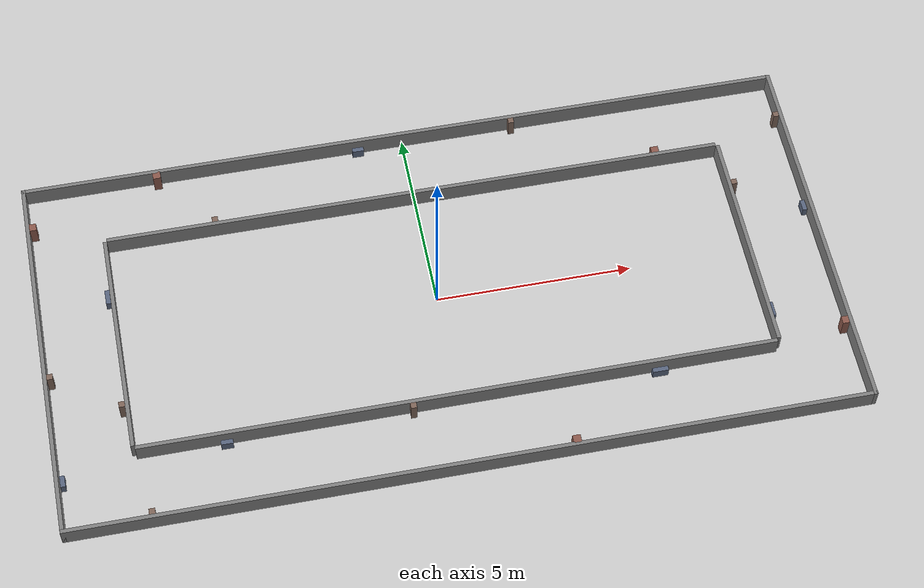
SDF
<?xml version="1.0" ?>
<sdf version="1.6">
  <world name="default">
    <!-- Ignition Fortress (v6) plugins - DO NOT use gz-sim-* or gz::sim::systems::* -->
    <plugin filename="libignition-gazebo-physics-system.so" name="ignition::gazebo::systems::Physics"/>
    <plugin filename="libignition-gazebo-user-commands-system.so" name="ignition::gazebo::systems::UserCommands"/>
    <plugin filename="libignition-gazebo-scene-broadcaster-system.so" name="ignition::gazebo::systems::SceneBroadcaster"/>
    <plugin filename="libignition-gazebo-imu-system.so" name="ignition::gazebo::systems::Imu"/>
    <plugin filename="libignition-gazebo-sensors-system.so" name="ignition::gazebo::systems::Sensors">
      <render_engine>ogre2</render_engine>
    </plugin>

    <!-- Directional light -->
    <light name="sun" type="directional">
      <pose>0 0 10 0 0.5 0</pose>
      <diffuse>1 1 1 1</diffuse>
      <specular>1 1 1 1</specular>
      <direction>-1 -1 -1</direction>
      <cast_shadows>true</cast_shadows>
    </light>

    <!-- Inline ground plane -->
    <model name="ground_plane">
      <static>true</static>
      <link name="link">
        <collision name="collision">
          <geometry>
            <plane>
              <normal>0 0 1</normal>
              <size>50 50</size>
            </plane>
          </geometry>
          <surface>
            <friction>
              <ode>
                <mu>100</mu>
                <mu2>50</mu2>
              </ode>
            </friction>
          </surface>
        </collision>
        <visual name="visual">
          <geometry>
            <plane>
              <normal>0 0 1</normal>
              <size>50 50</size>
            </plane>
          </geometry>
          <material>
            <ambient>0.8 0.8 0.8 1</ambient>
            <diffuse>0.8 0.8 0.8 1</diffuse>
            <specular>0.1 0.1 0.1 1</specular>
          </material>
        </visual>
      </link>
    </model>

    <!-- ========== OUTER WALLS ========== -->
    <!-- South outer: y=-5.0, from x=-10 to x=+10 -->
    <model name="wall_south_outer">
      <static>true</static>
      <pose>0 -4.95 0.25 0 0 0</pose>
      <link name="link">
        <collision name="collision">
          <geometry><box><size>20 0.1 0.5</size></box></geometry>
        </collision>
        <visual name="visual">
          <geometry><box><size>20 0.1 0.5</size></box></geometry>
          <material>
            <ambient>0.3 0.3 0.3 1</ambient>
            <diffuse>0.5 0.5 0.5 1</diffuse>
            <specular>0.1 0.1 0.1 1</specular>
          </material>
        </visual>
      </link>
    </model>

    <!-- North outer: y=+5.0, from x=-10 to x=+10 -->
    <model name="wall_north_outer">
      <static>true</static>
      <pose>0 4.95 0.25 0 0 0</pose>
      <link name="link">
        <collision name="collision">
          <geometry><box><size>20 0.1 0.5</size></box></geometry>
        </collision>
        <visual name="visual">
          <geometry><box><size>20 0.1 0.5</size></box></geometry>
          <material>
            <ambient>0.3 0.3 0.3 1</ambient>
            <diffuse>0.5 0.5 0.5 1</diffuse>
            <specular>0.1 0.1 0.1 1</specular>
          </material>
        </visual>
      </link>
    </model>

    <!-- West outer: x=-10.0, from y=-5 to y=+5 -->
    <model name="wall_west_outer">
      <static>true</static>
      <pose>-9.95 0 0.25 0 0 0</pose>
      <link name="link">
        <collision name="collision">
          <geometry><box><size>0.1 10 0.5</size></box></geometry>
        </collision>
        <visual name="visual">
          <geometry><box><size>0.1 10 0.5</size></box></geometry>
          <material>
            <ambient>0.3 0.3 0.3 1</ambient>
            <diffuse>0.5 0.5 0.5 1</diffuse>
            <specular>0.1 0.1 0.1 1</specular>
          </material>
        </visual>
      </link>
    </model>

    <!-- East outer: x=+10.0, from y=-5 to y=+5 -->
    <model name="wall_east_outer">
      <static>true</static>
      <pose>9.95 0 0.25 0 0 0</pose>
      <link name="link">
        <collision name="collision">
          <geometry><box><size>0.1 10 0.5</size></box></geometry>
        </collision>
        <visual name="visual">
          <geometry><box><size>0.1 10 0.5</size></box></geometry>
          <material>
            <ambient>0.3 0.3 0.3 1</ambient>
            <diffuse>0.5 0.5 0.5 1</diffuse>
            <specular>0.1 0.1 0.1 1</specular>
          </material>
        </visual>
      </link>
    </model>

    <!-- ========== INNER WALLS ========== -->
    <!-- South inner: y=-3.0, from x=-8 to x=+8 -->
    <model name="wall_south_inner">
      <static>true</static>
      <pose>0 -3.05 0.25 0 0 0</pose>
      <link name="link">
        <collision name="collision">
          <geometry><box><size>16 0.1 0.5</size></box></geometry>
        </collision>
        <visual name="visual">
          <geometry><box><size>16 0.1 0.5</size></box></geometry>
          <material>
            <ambient>0.3 0.3 0.3 1</ambient>
            <diffuse>0.5 0.5 0.5 1</diffuse>
            <specular>0.1 0.1 0.1 1</specular>
          </material>
        </visual>
      </link>
    </model>

    <!-- North inner: y=+3.0, from x=-8 to x=+8 -->
    <model name="wall_north_inner">
      <static>true</static>
      <pose>0 3.05 0.25 0 0 0</pose>
      <link name="link">
        <collision name="collision">
          <geometry><box><size>16 0.1 0.5</size></box></geometry>
        </collision>
        <visual name="visual">
          <geometry><box><size>16 0.1 0.5</size></box></geometry>
          <material>
            <ambient>0.3 0.3 0.3 1</ambient>
            <diffuse>0.5 0.5 0.5 1</diffuse>
            <specular>0.1 0.1 0.1 1</specular>
          </material>
        </visual>
      </link>
    </model>

    <!-- West inner: x=-8.0, from y=-3 to y=+3 -->
    <model name="wall_west_inner">
      <static>true</static>
      <pose>-8.05 0 0.25 0 0 0</pose>
      <link name="link">
        <collision name="collision">
          <geometry><box><size>0.1 6 0.5</size></box></geometry>
        </collision>
        <visual name="visual">
          <geometry><box><size>0.1 6 0.5</size></box></geometry>
          <material>
            <ambient>0.3 0.3 0.3 1</ambient>
            <diffuse>0.5 0.5 0.5 1</diffuse>
            <specular>0.1 0.1 0.1 1</specular>
          </material>
        </visual>
      </link>
    </model>

    <!-- East inner: x=+8.0, from y=-3 to y=+3 -->
    <model name="wall_east_inner">
      <static>true</static>
      <pose>8.05 0 0.25 0 0 0</pose>
      <link name="link">
        <collision name="collision">
          <geometry><box><size>0.1 6 0.5</size></box></geometry>
        </collision>
        <visual name="visual">
          <geometry><box><size>0.1 6 0.5</size></box></geometry>
          <material>
            <ambient>0.3 0.3 0.3 1</ambient>
            <diffuse>0.5 0.5 0.5 1</diffuse>
            <specular>0.1 0.1 0.1 1</specular>
          </material>
        </visual>
      </link>
    </model>

    <!-- === BOTTOM LEG: South outer wall (protrude +Y) === -->
    <model name="feat_1">
      <static>true</static>
      <pose>-7.8 -4.825 0.25 0 0 0</pose>
      <link name="link">
        <collision name="collision"><geometry><box><size>0.15 0.15 0.5</size></box></geometry></collision>
        <visual name="visual">
          <geometry><box><size>0.15 0.15 0.5</size></box></geometry>
          <material><ambient>0.4 0.3 0.25 1</ambient><diffuse>0.5 0.4 0.35 1</diffuse><specular>0.1 0.1 0.1 1</specular></material>
        </visual>
      </link>
    </model>
    <model name="feat_2">
      <static>true</static>
      <pose>-4.6 -4.83 0.125 0 0 0</pose>
      <link name="link">
        <collision name="collision"><geometry><box><size>0.40 0.12 0.25</size></box></geometry></collision>
        <visual name="visual">
          <geometry><box><size>0.40 0.12 0.25</size></box></geometry>
          <material><ambient>0.25 0.3 0.4 1</ambient><diffuse>0.35 0.4 0.5 1</diffuse><specular>0.1 0.1 0.1 1</specular></material>
        </visual>
      </link>
    </model>
    <model name="feat_3">
      <static>true</static>
      <pose>2.5 -4.825 0.25 0 0 0</pose>
      <link name="link">
        <collision name="collision"><geometry><box><size>0.20 0.20 0.5</size></box></geometry></collision>
        <visual name="visual">
          <geometry><box><size>0.20 0.20 0.5</size></box></geometry>
          <material><ambient>0.45 0.25 0.2 1</ambient><diffuse>0.55 0.35 0.3 1</diffuse><specular>0.1 0.1 0.1 1</specular></material>
        </visual>
      </link>
    </model>
    <model name="feat_4">
      <static>true</static>
      <pose>7.3 -4.83 0.125 0 0 0</pose>
      <link name="link">
        <collision name="collision"><geometry><box><size>0.30 0.12 0.25</size></box></geometry></collision>
        <visual name="visual">
          <geometry><box><size>0.30 0.12 0.25</size></box></geometry>
          <material><ambient>0.25 0.3 0.4 1</ambient><diffuse>0.35 0.4 0.5 1</diffuse><specular>0.1 0.1 0.1 1</specular></material>
        </visual>
      </link>
    </model>

    <!-- South inner wall (protrude -Y into bottom corridor) -->
    <model name="feat_5">
      <static>true</static>
      <pose>-5.8 -3.175 0.125 0 0 0</pose>
      <link name="link">
        <collision name="collision"><geometry><box><size>0.30 0.12 0.25</size></box></geometry></collision>
        <visual name="visual">
          <geometry><box><size>0.30 0.12 0.25</size></box></geometry>
          <material><ambient>0.25 0.3 0.4 1</ambient><diffuse>0.35 0.4 0.5 1</diffuse><specular>0.1 0.1 0.1 1</specular></material>
        </visual>
      </link>
    </model>
    <model name="feat_6">
      <static>true</static>
      <pose>-1.2 -3.175 0.25 0 0 0</pose>
      <link name="link">
        <collision name="collision"><geometry><box><size>0.15 0.15 0.5</size></box></geometry></collision>
        <visual name="visual">
          <geometry><box><size>0.15 0.15 0.5</size></box></geometry>
          <material><ambient>0.4 0.3 0.25 1</ambient><diffuse>0.5 0.4 0.35 1</diffuse><specular>0.1 0.1 0.1 1</specular></material>
        </visual>
      </link>
    </model>
    <model name="feat_7">
      <static>true</static>
      <pose>5.0 -3.18 0.125 0 0 0</pose>
      <link name="link">
        <collision name="collision"><geometry><box><size>0.40 0.12 0.25</size></box></geometry></collision>
        <visual name="visual">
          <geometry><box><size>0.40 0.12 0.25</size></box></geometry>
          <material><ambient>0.25 0.3 0.4 1</ambient><diffuse>0.35 0.4 0.5 1</diffuse><specular>0.1 0.1 0.1 1</specular></material>
        </visual>
      </link>
    </model>

    <!-- === TOP LEG: North outer wall (protrude -Y) === -->
    <model name="feat_8">
      <static>true</static>
      <pose>-6.5 4.825 0.25 0 0 0</pose>
      <link name="link">
        <collision name="collision"><geometry><box><size>0.20 0.20 0.5</size></box></geometry></collision>
        <visual name="visual">
          <geometry><box><size>0.20 0.20 0.5</size></box></geometry>
          <material><ambient>0.45 0.25 0.2 1</ambient><diffuse>0.55 0.35 0.3 1</diffuse><specular>0.1 0.1 0.1 1</specular></material>
        </visual>
      </link>
    </model>
    <model name="feat_9">
      <static>true</static>
      <pose>-1.2 4.83 0.125 0 0 0</pose>
      <link name="link">
        <collision name="collision"><geometry><box><size>0.30 0.12 0.25</size></box></geometry></collision>
        <visual name="visual">
          <geometry><box><size>0.30 0.12 0.25</size></box></geometry>
          <material><ambient>0.25 0.3 0.4 1</ambient><diffuse>0.35 0.4 0.5 1</diffuse><specular>0.1 0.1 0.1 1</specular></material>
        </visual>
      </link>
    </model>
    <model name="feat_10">
      <static>true</static>
      <pose>2.9 4.825 0.25 0 0 0</pose>
      <link name="link">
        <collision name="collision"><geometry><box><size>0.15 0.15 0.5</size></box></geometry></collision>
        <visual name="visual">
          <geometry><box><size>0.15 0.15 0.5</size></box></geometry>
          <material><ambient>0.4 0.3 0.25 1</ambient><diffuse>0.5 0.4 0.35 1</diffuse><specular>0.1 0.1 0.1 1</specular></material>
        </visual>
      </link>
    </model>

    <!-- North inner wall (protrude +Y into top corridor) -->
    <model name="feat_11">
      <static>true</static>
      <pose>-5.2 3.175 0.25 0 0 0</pose>
      <link name="link">
        <collision name="collision"><geometry><box><size>0.15 0.15 0.5</size></box></geometry></collision>
        <visual name="visual">
          <geometry><box><size>0.15 0.15 0.5</size></box></geometry>
          <material><ambient>0.4 0.3 0.25 1</ambient><diffuse>0.5 0.4 0.35 1</diffuse><specular>0.1 0.1 0.1 1</specular></material>
        </visual>
      </link>
    </model>
    <model name="feat_12">
      <static>true</static>
      <pose>0.6 3.18 0.125 0 0 0</pose>
      <link name="link">
        <collision name="collision"><geometry><box><size>0.40 0.12 0.25</size></box></geometry></collision>
        <visual name="visual">
          <geometry><box><size>0.40 0.12 0.25</size></box></geometry>
          <material><ambient>0.25 0.3 0.4 1</ambient><diffuse>0.35 0.4 0.5 1</diffuse><specular>0.1 0.1 0.1 1</specular></material>
        </visual>
      </link>
    </model>
    <model name="feat_13">
      <static>true</static>
      <pose>6.4 3.175 0.25 0 0 0</pose>
      <link name="link">
        <collision name="collision"><geometry><box><size>0.20 0.20 0.5</size></box></geometry></collision>
        <visual name="visual">
          <geometry><box><size>0.20 0.20 0.5</size></box></geometry>
          <material><ambient>0.45 0.25 0.2 1</ambient><diffuse>0.55 0.35 0.3 1</diffuse><specular>0.1 0.1 0.1 1</specular></material>
        </visual>
      </link>
    </model>

    <!-- === LEFT LEG: West outer wall (protrude +X) === -->
    <model name="feat_14">
      <static>true</static>
      <pose>-9.825 -3.5 0.125 0 0 0</pose>
      <link name="link">
        <collision name="collision"><geometry><box><size>0.12 0.30 0.25</size></box></geometry></collision>
        <visual name="visual">
          <geometry><box><size>0.12 0.30 0.25</size></box></geometry>
          <material><ambient>0.25 0.3 0.4 1</ambient><diffuse>0.35 0.4 0.5 1</diffuse><specular>0.1 0.1 0.1 1</specular></material>
        </visual>
      </link>
    </model>
    <model name="feat_15">
      <static>true</static>
      <pose>-9.825 -0.7 0.25 0 0 0</pose>
      <link name="link">
        <collision name="collision"><geometry><box><size>0.15 0.15 0.5</size></box></geometry></collision>
        <visual name="visual">
          <geometry><box><size>0.15 0.15 0.5</size></box></geometry>
          <material><ambient>0.4 0.3 0.25 1</ambient><diffuse>0.5 0.4 0.35 1</diffuse><specular>0.1 0.1 0.1 1</specular></material>
        </visual>
      </link>
    </model>
    <model name="feat_16">
      <static>true</static>
      <pose>-9.825 3.8 0.25 0 0 0</pose>
      <link name="link">
        <collision name="collision"><geometry><box><size>0.20 0.20 0.5</size></box></geometry></collision>
        <visual name="visual">
          <geometry><box><size>0.20 0.20 0.5</size></box></geometry>
          <material><ambient>0.45 0.25 0.2 1</ambient><diffuse>0.55 0.35 0.3 1</diffuse><specular>0.1 0.1 0.1 1</specular></material>
        </visual>
      </link>
    </model>

    <!-- West inner wall (protrude +X into left corridor) -->
    <model name="feat_17">
      <static>true</static>
      <pose>-8.175 -1.8 0.25 0 0 0</pose>
      <link name="link">
        <collision name="collision"><geometry><box><size>0.15 0.15 0.5</size></box></geometry></collision>
        <visual name="visual">
          <geometry><box><size>0.15 0.15 0.5</size></box></geometry>
          <material><ambient>0.4 0.3 0.25 1</ambient><diffuse>0.5 0.4 0.35 1</diffuse><specular>0.1 0.1 0.1 1</specular></material>
        </visual>
      </link>
    </model>
    <model name="feat_18">
      <static>true</static>
      <pose>-8.175 1.5 0.125 0 0 0</pose>
      <link name="link">
        <collision name="collision"><geometry><box><size>0.12 0.40 0.25</size></box></geometry></collision>
        <visual name="visual">
          <geometry><box><size>0.12 0.40 0.25</size></box></geometry>
          <material><ambient>0.25 0.3 0.4 1</ambient><diffuse>0.35 0.4 0.5 1</diffuse><specular>0.1 0.1 0.1 1</specular></material>
        </visual>
      </link>
    </model>

    <!-- === RIGHT LEG: East outer wall (protrude -X) === -->
    <model name="feat_19">
      <static>true</static>
      <pose>9.825 -2.8 0.25 0 0 0</pose>
      <link name="link">
        <collision name="collision"><geometry><box><size>0.20 0.20 0.5</size></box></geometry></collision>
        <visual name="visual">
          <geometry><box><size>0.20 0.20 0.5</size></box></geometry>
          <material><ambient>0.45 0.25 0.2 1</ambient><diffuse>0.55 0.35 0.3 1</diffuse><specular>0.1 0.1 0.1 1</specular></material>
        </visual>
      </link>
    </model>
    <model name="feat_20">
      <static>true</static>
      <pose>9.825 0.9 0.125 0 0 0</pose>
      <link name="link">
        <collision name="collision"><geometry><box><size>0.12 0.30 0.25</size></box></geometry></collision>
        <visual name="visual">
          <geometry><box><size>0.12 0.30 0.25</size></box></geometry>
          <material><ambient>0.25 0.3 0.4 1</ambient><diffuse>0.35 0.4 0.5 1</diffuse><specular>0.1 0.1 0.1 1</specular></material>
        </visual>
      </link>
    </model>
    <model name="feat_21">
      <static>true</static>
      <pose>9.825 3.7 0.25 0 0 0</pose>
      <link name="link">
        <collision name="collision"><geometry><box><size>0.15 0.15 0.5</size></box></geometry></collision>
        <visual name="visual">
          <geometry><box><size>0.15 0.15 0.5</size></box></geometry>
          <material><ambient>0.4 0.3 0.25 1</ambient><diffuse>0.5 0.4 0.35 1</diffuse><specular>0.1 0.1 0.1 1</specular></material>
        </visual>
      </link>
    </model>

    <!-- East inner wall (protrude -X into right corridor) -->
    <model name="feat_22">
      <static>true</static>
      <pose>8.175 -2.0 0.125 0 0 0</pose>
      <link name="link">
        <collision name="collision"><geometry><box><size>0.12 0.40 0.25</size></box></geometry></collision>
        <visual name="visual">
          <geometry><box><size>0.12 0.40 0.25</size></box></geometry>
          <material><ambient>0.25 0.3 0.4 1</ambient><diffuse>0.35 0.4 0.5 1</diffuse><specular>0.1 0.1 0.1 1</specular></material>
        </visual>
      </link>
    </model>
    <model name="feat_23">
      <static>true</static>
      <pose>8.175 1.8 0.25 0 0 0</pose>
      <link name="link">
        <collision name="collision"><geometry><box><size>0.15 0.15 0.5</size></box></geometry></collision>
        <visual name="visual">
          <geometry><box><size>0.15 0.15 0.5</size></box></geometry>
          <material><ambient>0.4 0.3 0.25 1</ambient><diffuse>0.5 0.4 0.35 1</diffuse><specular>0.1 0.1 0.1 1</specular></material>
        </visual>
      </link>
    </model>
  </world>
</sdf>
